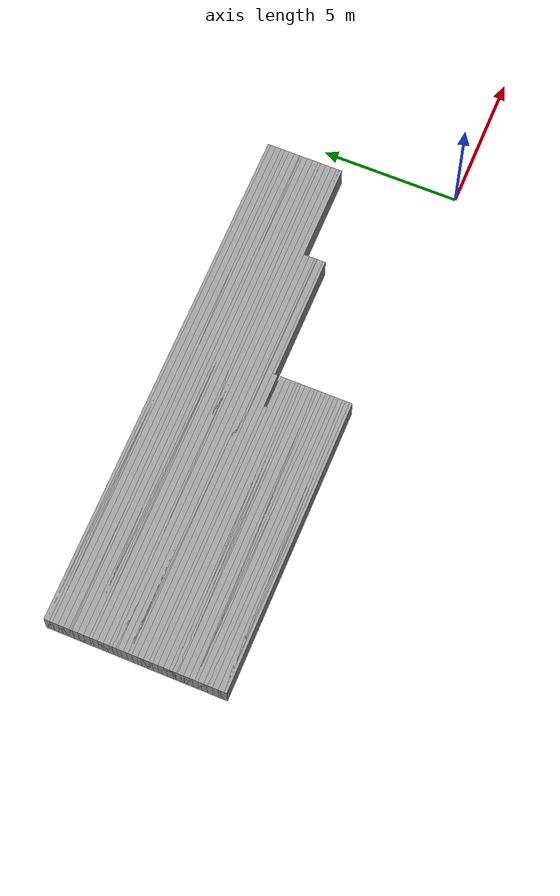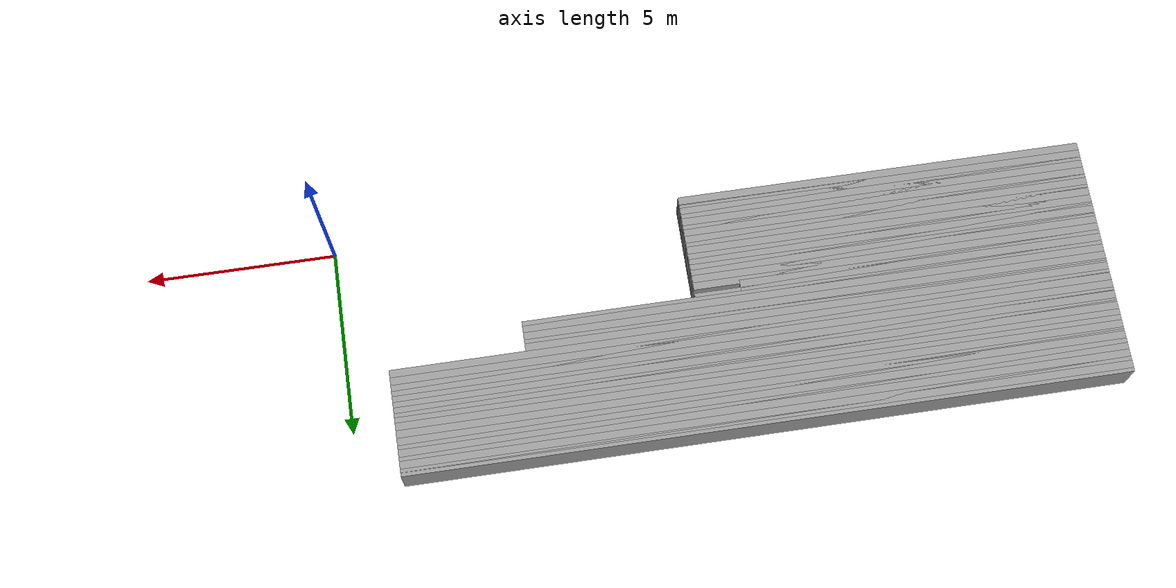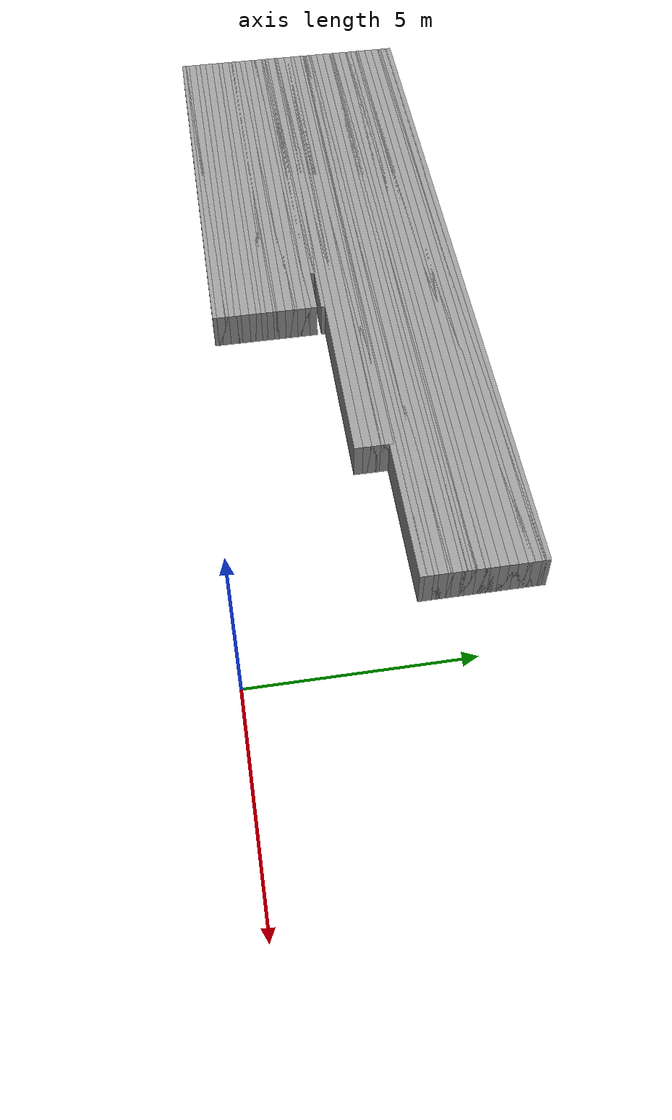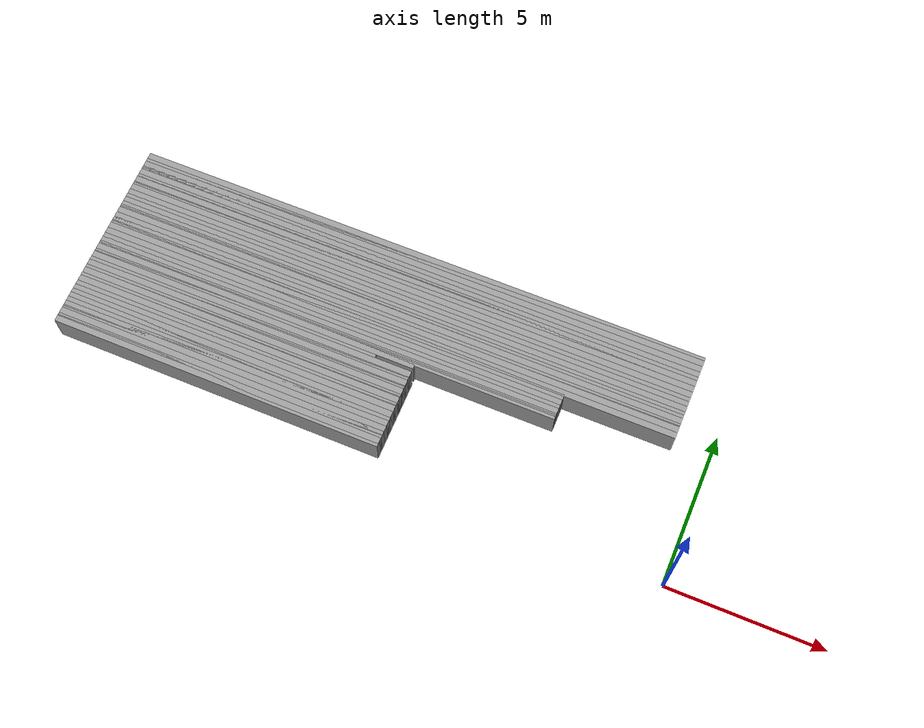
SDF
<sdf version="1.6">
 <world name="GridMap">
  <model name="GridMap">
   <link name="Wall_(145.5,4.0)">
    <collision name="Wall_(145.5,4.0)_Collision">
     <geometry><box><size>10.700000000000001 0.2 1.0</size></box></geometry>
     <pose>-14.55 0.4 0.5 0 -0 0</pose>
    </collision>
    <visual name="Wall_(145.5,4.0)_Visual">
     <geometry><box><size>10.700000000000001 0.2 1.0</size></box></geometry>
     <pose>-14.55 0.4 0.5 0 -0 0</pose>
     <material>
      <script><uri>file://media/materials/scripts/gazebo.material</uri><name>Gazebo/Grey</name></script>
      <ambient>1 1 1 1</ambient>
     </material>
     <meta><layer>0</layer></meta>
    </visual>
    <pose>0 0 0.5 0 -0 0</pose>
   </link>
   <link name="Wall_(145.5,5.0)">
    <collision name="Wall_(145.5,5.0)_Collision">
     <geometry><box><size>10.700000000000001 0.2 1.0</size></box></geometry>
     <pose>-14.55 0.5 0.5 0 -0 0</pose>
    </collision>
    <visual name="Wall_(145.5,5.0)_Visual">
     <geometry><box><size>10.700000000000001 0.2 1.0</size></box></geometry>
     <pose>-14.55 0.5 0.5 0 -0 0</pose>
     <material>
      <script><uri>file://media/materials/scripts/gazebo.material</uri><name>Gazebo/Grey</name></script>
      <ambient>1 1 1 1</ambient>
     </material>
     <meta><layer>0</layer></meta>
    </visual>
    <pose>0 0 0.5 0 -0 0</pose>
   </link>
   <link name="Wall_(145.5,6.0)">
    <collision name="Wall_(145.5,6.0)_Collision">
     <geometry><box><size>10.700000000000001 0.2 1.0</size></box></geometry>
     <pose>-14.55 0.6000000000000001 0.5 0 -0 0</pose>
    </collision>
    <visual name="Wall_(145.5,6.0)_Visual">
     <geometry><box><size>10.700000000000001 0.2 1.0</size></box></geometry>
     <pose>-14.55 0.6000000000000001 0.5 0 -0 0</pose>
     <material>
      <script><uri>file://media/materials/scripts/gazebo.material</uri><name>Gazebo/Grey</name></script>
      <ambient>1 1 1 1</ambient>
     </material>
     <meta><layer>0</layer></meta>
    </visual>
    <pose>0 0 0.5 0 -0 0</pose>
   </link>
   <link name="Wall_(145.5,7.0)">
    <collision name="Wall_(145.5,7.0)_Collision">
     <geometry><box><size>10.700000000000001 0.2 1.0</size></box></geometry>
     <pose>-14.55 0.7000000000000001 0.5 0 -0 0</pose>
    </collision>
    <visual name="Wall_(145.5,7.0)_Visual">
     <geometry><box><size>10.700000000000001 0.2 1.0</size></box></geometry>
     <pose>-14.55 0.7000000000000001 0.5 0 -0 0</pose>
     <material>
      <script><uri>file://media/materials/scripts/gazebo.material</uri><name>Gazebo/Grey</name></script>
      <ambient>1 1 1 1</ambient>
     </material>
     <meta><layer>0</layer></meta>
    </visual>
    <pose>0 0 0.5 0 -0 0</pose>
   </link>
   <link name="Wall_(145.5,8.0)">
    <collision name="Wall_(145.5,8.0)_Collision">
     <geometry><box><size>10.700000000000001 0.2 1.0</size></box></geometry>
     <pose>-14.55 0.8 0.5 0 -0 0</pose>
    </collision>
    <visual name="Wall_(145.5,8.0)_Visual">
     <geometry><box><size>10.700000000000001 0.2 1.0</size></box></geometry>
     <pose>-14.55 0.8 0.5 0 -0 0</pose>
     <material>
      <script><uri>file://media/materials/scripts/gazebo.material</uri><name>Gazebo/Grey</name></script>
      <ambient>1 1 1 1</ambient>
     </material>
     <meta><layer>0</layer></meta>
    </visual>
    <pose>0 0 0.5 0 -0 0</pose>
   </link>
   <link name="Wall_(145.5,9.0)">
    <collision name="Wall_(145.5,9.0)_Collision">
     <geometry><box><size>10.700000000000001 0.2 1.0</size></box></geometry>
     <pose>-14.55 0.9 0.5 0 -0 0</pose>
    </collision>
    <visual name="Wall_(145.5,9.0)_Visual">
     <geometry><box><size>10.700000000000001 0.2 1.0</size></box></geometry>
     <pose>-14.55 0.9 0.5 0 -0 0</pose>
     <material>
      <script><uri>file://media/materials/scripts/gazebo.material</uri><name>Gazebo/Grey</name></script>
      <ambient>1 1 1 1</ambient>
     </material>
     <meta><layer>0</layer></meta>
    </visual>
    <pose>0 0 0.5 0 -0 0</pose>
   </link>
   <link name="Wall_(145.5,10.0)">
    <collision name="Wall_(145.5,10.0)_Collision">
     <geometry><box><size>10.700000000000001 0.2 1.0</size></box></geometry>
     <pose>-14.55 1.0 0.5 0 -0 0</pose>
    </collision>
    <visual name="Wall_(145.5,10.0)_Visual">
     <geometry><box><size>10.700000000000001 0.2 1.0</size></box></geometry>
     <pose>-14.55 1.0 0.5 0 -0 0</pose>
     <material>
      <script><uri>file://media/materials/scripts/gazebo.material</uri><name>Gazebo/Grey</name></script>
      <ambient>1 1 1 1</ambient>
     </material>
     <meta><layer>0</layer></meta>
    </visual>
    <pose>0 0 0.5 0 -0 0</pose>
   </link>
   <link name="Wall_(145.5,11.0)">
    <collision name="Wall_(145.5,11.0)_Collision">
     <geometry><box><size>10.700000000000001 0.2 1.0</size></box></geometry>
     <pose>-14.55 1.1 0.5 0 -0 0</pose>
    </collision>
    <visual name="Wall_(145.5,11.0)_Visual">
     <geometry><box><size>10.700000000000001 0.2 1.0</size></box></geometry>
     <pose>-14.55 1.1 0.5 0 -0 0</pose>
     <material>
      <script><uri>file://media/materials/scripts/gazebo.material</uri><name>Gazebo/Grey</name></script>
      <ambient>1 1 1 1</ambient>
     </material>
     <meta><layer>0</layer></meta>
    </visual>
    <pose>0 0 0.5 0 -0 0</pose>
   </link>
   <link name="Wall_(145.5,12.0)">
    <collision name="Wall_(145.5,12.0)_Collision">
     <geometry><box><size>10.700000000000001 0.2 1.0</size></box></geometry>
     <pose>-14.55 1.2000000000000002 0.5 0 -0 0</pose>
    </collision>
    <visual name="Wall_(145.5,12.0)_Visual">
     <geometry><box><size>10.700000000000001 0.2 1.0</size></box></geometry>
     <pose>-14.55 1.2000000000000002 0.5 0 -0 0</pose>
     <material>
      <script><uri>file://media/materials/scripts/gazebo.material</uri><name>Gazebo/Grey</name></script>
      <ambient>1 1 1 1</ambient>
     </material>
     <meta><layer>0</layer></meta>
    </visual>
    <pose>0 0 0.5 0 -0 0</pose>
   </link>
   <link name="Wall_(145.5,13.0)">
    <collision name="Wall_(145.5,13.0)_Collision">
     <geometry><box><size>10.700000000000001 0.2 1.0</size></box></geometry>
     <pose>-14.55 1.3 0.5 0 -0 0</pose>
    </collision>
    <visual name="Wall_(145.5,13.0)_Visual">
     <geometry><box><size>10.700000000000001 0.2 1.0</size></box></geometry>
     <pose>-14.55 1.3 0.5 0 -0 0</pose>
     <material>
      <script><uri>file://media/materials/scripts/gazebo.material</uri><name>Gazebo/Grey</name></script>
      <ambient>1 1 1 1</ambient>
     </material>
     <meta><layer>0</layer></meta>
    </visual>
    <pose>0 0 0.5 0 -0 0</pose>
   </link>
   <link name="Wall_(145.5,14.0)">
    <collision name="Wall_(145.5,14.0)_Collision">
     <geometry><box><size>10.700000000000001 0.2 1.0</size></box></geometry>
     <pose>-14.55 1.4000000000000001 0.5 0 -0 0</pose>
    </collision>
    <visual name="Wall_(145.5,14.0)_Visual">
     <geometry><box><size>10.700000000000001 0.2 1.0</size></box></geometry>
     <pose>-14.55 1.4000000000000001 0.5 0 -0 0</pose>
     <material>
      <script><uri>file://media/materials/scripts/gazebo.material</uri><name>Gazebo/Grey</name></script>
      <ambient>1 1 1 1</ambient>
     </material>
     <meta><layer>0</layer></meta>
    </visual>
    <pose>0 0 0.5 0 -0 0</pose>
   </link>
   <link name="Wall_(145.5,15.0)">
    <collision name="Wall_(145.5,15.0)_Collision">
     <geometry><box><size>10.700000000000001 0.2 1.0</size></box></geometry>
     <pose>-14.55 1.5 0.5 0 -0 0</pose>
    </collision>
    <visual name="Wall_(145.5,15.0)_Visual">
     <geometry><box><size>10.700000000000001 0.2 1.0</size></box></geometry>
     <pose>-14.55 1.5 0.5 0 -0 0</pose>
     <material>
      <script><uri>file://media/materials/scripts/gazebo.material</uri><name>Gazebo/Grey</name></script>
      <ambient>1 1 1 1</ambient>
     </material>
     <meta><layer>0</layer></meta>
    </visual>
    <pose>0 0 0.5 0 -0 0</pose>
   </link>
   <link name="Wall_(145.5,16.0)">
    <collision name="Wall_(145.5,16.0)_Collision">
     <geometry><box><size>10.700000000000001 0.2 1.0</size></box></geometry>
     <pose>-14.55 1.6 0.5 0 -0 0</pose>
    </collision>
    <visual name="Wall_(145.5,16.0)_Visual">
     <geometry><box><size>10.700000000000001 0.2 1.0</size></box></geometry>
     <pose>-14.55 1.6 0.5 0 -0 0</pose>
     <material>
      <script><uri>file://media/materials/scripts/gazebo.material</uri><name>Gazebo/Grey</name></script>
      <ambient>1 1 1 1</ambient>
     </material>
     <meta><layer>0</layer></meta>
    </visual>
    <pose>0 0 0.5 0 -0 0</pose>
   </link>
   <link name="Wall_(145.5,17.0)">
    <collision name="Wall_(145.5,17.0)_Collision">
     <geometry><box><size>10.700000000000001 0.2 1.0</size></box></geometry>
     <pose>-14.55 1.7000000000000002 0.5 0 -0 0</pose>
    </collision>
    <visual name="Wall_(145.5,17.0)_Visual">
     <geometry><box><size>10.700000000000001 0.2 1.0</size></box></geometry>
     <pose>-14.55 1.7000000000000002 0.5 0 -0 0</pose>
     <material>
      <script><uri>file://media/materials/scripts/gazebo.material</uri><name>Gazebo/Grey</name></script>
      <ambient>1 1 1 1</ambient>
     </material>
     <meta><layer>0</layer></meta>
    </visual>
    <pose>0 0 0.5 0 -0 0</pose>
   </link>
   <link name="Wall_(145.5,18.0)">
    <collision name="Wall_(145.5,18.0)_Collision">
     <geometry><box><size>10.700000000000001 0.2 1.0</size></box></geometry>
     <pose>-14.55 1.8 0.5 0 -0 0</pose>
    </collision>
    <visual name="Wall_(145.5,18.0)_Visual">
     <geometry><box><size>10.700000000000001 0.2 1.0</size></box></geometry>
     <pose>-14.55 1.8 0.5 0 -0 0</pose>
     <material>
      <script><uri>file://media/materials/scripts/gazebo.material</uri><name>Gazebo/Grey</name></script>
      <ambient>1 1 1 1</ambient>
     </material>
     <meta><layer>0</layer></meta>
    </visual>
    <pose>0 0 0.5 0 -0 0</pose>
   </link>
   <link name="Wall_(145.5,19.0)">
    <collision name="Wall_(145.5,19.0)_Collision">
     <geometry><box><size>10.700000000000001 0.2 1.0</size></box></geometry>
     <pose>-14.55 1.9000000000000001 0.5 0 -0 0</pose>
    </collision>
    <visual name="Wall_(145.5,19.0)_Visual">
     <geometry><box><size>10.700000000000001 0.2 1.0</size></box></geometry>
     <pose>-14.55 1.9000000000000001 0.5 0 -0 0</pose>
     <material>
      <script><uri>file://media/materials/scripts/gazebo.material</uri><name>Gazebo/Grey</name></script>
      <ambient>1 1 1 1</ambient>
     </material>
     <meta><layer>0</layer></meta>
    </visual>
    <pose>0 0 0.5 0 -0 0</pose>
   </link>
   <link name="Wall_(145.5,20.0)">
    <collision name="Wall_(145.5,20.0)_Collision">
     <geometry><box><size>10.700000000000001 0.2 1.0</size></box></geometry>
     <pose>-14.55 2.0 0.5 0 -0 0</pose>
    </collision>
    <visual name="Wall_(145.5,20.0)_Visual">
     <geometry><box><size>10.700000000000001 0.2 1.0</size></box></geometry>
     <pose>-14.55 2.0 0.5 0 -0 0</pose>
     <material>
      <script><uri>file://media/materials/scripts/gazebo.material</uri><name>Gazebo/Grey</name></script>
      <ambient>1 1 1 1</ambient>
     </material>
     <meta><layer>0</layer></meta>
    </visual>
    <pose>0 0 0.5 0 -0 0</pose>
   </link>
   <link name="Wall_(145.5,21.0)">
    <collision name="Wall_(145.5,21.0)_Collision">
     <geometry><box><size>10.700000000000001 0.2 1.0</size></box></geometry>
     <pose>-14.55 2.1 0.5 0 -0 0</pose>
    </collision>
    <visual name="Wall_(145.5,21.0)_Visual">
     <geometry><box><size>10.700000000000001 0.2 1.0</size></box></geometry>
     <pose>-14.55 2.1 0.5 0 -0 0</pose>
     <material>
      <script><uri>file://media/materials/scripts/gazebo.material</uri><name>Gazebo/Grey</name></script>
      <ambient>1 1 1 1</ambient>
     </material>
     <meta><layer>0</layer></meta>
    </visual>
    <pose>0 0 0.5 0 -0 0</pose>
   </link>
   <link name="Wall_(145.5,22.0)">
    <collision name="Wall_(145.5,22.0)_Collision">
     <geometry><box><size>10.700000000000001 0.2 1.0</size></box></geometry>
     <pose>-14.55 2.2 0.5 0 -0 0</pose>
    </collision>
    <visual name="Wall_(145.5,22.0)_Visual">
     <geometry><box><size>10.700000000000001 0.2 1.0</size></box></geometry>
     <pose>-14.55 2.2 0.5 0 -0 0</pose>
     <material>
      <script><uri>file://media/materials/scripts/gazebo.material</uri><name>Gazebo/Grey</name></script>
      <ambient>1 1 1 1</ambient>
     </material>
     <meta><layer>0</layer></meta>
    </visual>
    <pose>0 0 0.5 0 -0 0</pose>
   </link>
   <link name="Wall_(145.5,23.0)">
    <collision name="Wall_(145.5,23.0)_Collision">
     <geometry><box><size>10.700000000000001 0.2 1.0</size></box></geometry>
     <pose>-14.55 2.3000000000000003 0.5 0 -0 0</pose>
    </collision>
    <visual name="Wall_(145.5,23.0)_Visual">
     <geometry><box><size>10.700000000000001 0.2 1.0</size></box></geometry>
     <pose>-14.55 2.3000000000000003 0.5 0 -0 0</pose>
     <material>
      <script><uri>file://media/materials/scripts/gazebo.material</uri><name>Gazebo/Grey</name></script>
      <ambient>1 1 1 1</ambient>
     </material>
     <meta><layer>0</layer></meta>
    </visual>
    <pose>0 0 0.5 0 -0 0</pose>
   </link>
   <link name="Wall_(145.5,24.0)">
    <collision name="Wall_(145.5,24.0)_Collision">
     <geometry><box><size>10.700000000000001 0.2 1.0</size></box></geometry>
     <pose>-14.55 2.4000000000000004 0.5 0 -0 0</pose>
    </collision>
    <visual name="Wall_(145.5,24.0)_Visual">
     <geometry><box><size>10.700000000000001 0.2 1.0</size></box></geometry>
     <pose>-14.55 2.4000000000000004 0.5 0 -0 0</pose>
     <material>
      <script><uri>file://media/materials/scripts/gazebo.material</uri><name>Gazebo/Grey</name></script>
      <ambient>1 1 1 1</ambient>
     </material>
     <meta><layer>0</layer></meta>
    </visual>
    <pose>0 0 0.5 0 -0 0</pose>
   </link>
   <link name="Wall_(145.5,25.0)">
    <collision name="Wall_(145.5,25.0)_Collision">
     <geometry><box><size>10.700000000000001 0.2 1.0</size></box></geometry>
     <pose>-14.55 2.5 0.5 0 -0 0</pose>
    </collision>
    <visual name="Wall_(145.5,25.0)_Visual">
     <geometry><box><size>10.700000000000001 0.2 1.0</size></box></geometry>
     <pose>-14.55 2.5 0.5 0 -0 0</pose>
     <material>
      <script><uri>file://media/materials/scripts/gazebo.material</uri><name>Gazebo/Grey</name></script>
      <ambient>1 1 1 1</ambient>
     </material>
     <meta><layer>0</layer></meta>
    </visual>
    <pose>0 0 0.5 0 -0 0</pose>
   </link>
   <link name="Wall_(145.5,26.0)">
    <collision name="Wall_(145.5,26.0)_Collision">
     <geometry><box><size>10.700000000000001 0.2 1.0</size></box></geometry>
     <pose>-14.55 2.6 0.5 0 -0 0</pose>
    </collision>
    <visual name="Wall_(145.5,26.0)_Visual">
     <geometry><box><size>10.700000000000001 0.2 1.0</size></box></geometry>
     <pose>-14.55 2.6 0.5 0 -0 0</pose>
     <material>
      <script><uri>file://media/materials/scripts/gazebo.material</uri><name>Gazebo/Grey</name></script>
      <ambient>1 1 1 1</ambient>
     </material>
     <meta><layer>0</layer></meta>
    </visual>
    <pose>0 0 0.5 0 -0 0</pose>
   </link>
   <link name="Wall_(145.5,27.0)">
    <collision name="Wall_(145.5,27.0)_Collision">
     <geometry><box><size>10.700000000000001 0.2 1.0</size></box></geometry>
     <pose>-14.55 2.7 0.5 0 -0 0</pose>
    </collision>
    <visual name="Wall_(145.5,27.0)_Visual">
     <geometry><box><size>10.700000000000001 0.2 1.0</size></box></geometry>
     <pose>-14.55 2.7 0.5 0 -0 0</pose>
     <material>
      <script><uri>file://media/materials/scripts/gazebo.material</uri><name>Gazebo/Grey</name></script>
      <ambient>1 1 1 1</ambient>
     </material>
     <meta><layer>0</layer></meta>
    </visual>
    <pose>0 0 0.5 0 -0 0</pose>
   </link>
   <link name="Wall_(145.5,28.0)">
    <collision name="Wall_(145.5,28.0)_Collision">
     <geometry><box><size>10.700000000000001 0.2 1.0</size></box></geometry>
     <pose>-14.55 2.8000000000000003 0.5 0 -0 0</pose>
    </collision>
    <visual name="Wall_(145.5,28.0)_Visual">
     <geometry><box><size>10.700000000000001 0.2 1.0</size></box></geometry>
     <pose>-14.55 2.8000000000000003 0.5 0 -0 0</pose>
     <material>
      <script><uri>file://media/materials/scripts/gazebo.material</uri><name>Gazebo/Grey</name></script>
      <ambient>1 1 1 1</ambient>
     </material>
     <meta><layer>0</layer></meta>
    </visual>
    <pose>0 0 0.5 0 -0 0</pose>
   </link>
   <link name="Wall_(151.5,29.0)">
    <collision name="Wall_(151.5,29.0)_Collision">
     <geometry><box><size>9.5 0.2 1.0</size></box></geometry>
     <pose>-15.15 2.9000000000000004 0.5 0 -0 0</pose>
    </collision>
    <visual name="Wall_(151.5,29.0)_Visual">
     <geometry><box><size>9.5 0.2 1.0</size></box></geometry>
     <pose>-15.15 2.9000000000000004 0.5 0 -0 0</pose>
     <material>
      <script><uri>file://media/materials/scripts/gazebo.material</uri><name>Gazebo/Grey</name></script>
      <ambient>1 1 1 1</ambient>
     </material>
     <meta><layer>0</layer></meta>
    </visual>
    <pose>0 0 0.5 0 -0 0</pose>
   </link>
   <link name="Wall_(151.5,30.0)">
    <collision name="Wall_(151.5,30.0)_Collision">
     <geometry><box><size>9.5 0.2 1.0</size></box></geometry>
     <pose>-15.15 3.0 0.5 0 -0 0</pose>
    </collision>
    <visual name="Wall_(151.5,30.0)_Visual">
     <geometry><box><size>9.5 0.2 1.0</size></box></geometry>
     <pose>-15.15 3.0 0.5 0 -0 0</pose>
     <material>
      <script><uri>file://media/materials/scripts/gazebo.material</uri><name>Gazebo/Grey</name></script>
      <ambient>1 1 1 1</ambient>
     </material>
     <meta><layer>0</layer></meta>
    </visual>
    <pose>0 0 0.5 0 -0 0</pose>
   </link>
   <link name="Wall_(145.5,31.0)">
    <collision name="Wall_(145.5,31.0)_Collision">
     <geometry><box><size>10.700000000000001 0.2 1.0</size></box></geometry>
     <pose>-14.55 3.1 0.5 0 -0 0</pose>
    </collision>
    <visual name="Wall_(145.5,31.0)_Visual">
     <geometry><box><size>10.700000000000001 0.2 1.0</size></box></geometry>
     <pose>-14.55 3.1 0.5 0 -0 0</pose>
     <material>
      <script><uri>file://media/materials/scripts/gazebo.material</uri><name>Gazebo/Grey</name></script>
      <ambient>1 1 1 1</ambient>
     </material>
     <meta><layer>0</layer></meta>
    </visual>
    <pose>0 0 0.5 0 -0 0</pose>
   </link>
   <link name="Wall_(123.0,32.0)">
    <collision name="Wall_(123.0,32.0)_Collision">
     <geometry><box><size>15.200000000000001 0.2 1.0</size></box></geometry>
     <pose>-12.3 3.2 0.5 0 -0 0</pose>
    </collision>
    <visual name="Wall_(123.0,32.0)_Visual">
     <geometry><box><size>15.200000000000001 0.2 1.0</size></box></geometry>
     <pose>-12.3 3.2 0.5 0 -0 0</pose>
     <material>
      <script><uri>file://media/materials/scripts/gazebo.material</uri><name>Gazebo/Grey</name></script>
      <ambient>1 1 1 1</ambient>
     </material>
     <meta><layer>0</layer></meta>
    </visual>
    <pose>0 0 0.5 0 -0 0</pose>
   </link>
   <link name="Wall_(123.0,33.0)">
    <collision name="Wall_(123.0,33.0)_Collision">
     <geometry><box><size>15.200000000000001 0.2 1.0</size></box></geometry>
     <pose>-12.3 3.3000000000000003 0.5 0 -0 0</pose>
    </collision>
    <visual name="Wall_(123.0,33.0)_Visual">
     <geometry><box><size>15.200000000000001 0.2 1.0</size></box></geometry>
     <pose>-12.3 3.3000000000000003 0.5 0 -0 0</pose>
     <material>
      <script><uri>file://media/materials/scripts/gazebo.material</uri><name>Gazebo/Grey</name></script>
      <ambient>1 1 1 1</ambient>
     </material>
     <meta><layer>0</layer></meta>
    </visual>
    <pose>0 0 0.5 0 -0 0</pose>
   </link>
   <link name="Wall_(123.0,34.0)">
    <collision name="Wall_(123.0,34.0)_Collision">
     <geometry><box><size>15.200000000000001 0.2 1.0</size></box></geometry>
     <pose>-12.3 3.4000000000000004 0.5 0 -0 0</pose>
    </collision>
    <visual name="Wall_(123.0,34.0)_Visual">
     <geometry><box><size>15.200000000000001 0.2 1.0</size></box></geometry>
     <pose>-12.3 3.4000000000000004 0.5 0 -0 0</pose>
     <material>
      <script><uri>file://media/materials/scripts/gazebo.material</uri><name>Gazebo/Grey</name></script>
      <ambient>1 1 1 1</ambient>
     </material>
     <meta><layer>0</layer></meta>
    </visual>
    <pose>0 0 0.5 0 -0 0</pose>
   </link>
   <link name="Wall_(123.0,35.0)">
    <collision name="Wall_(123.0,35.0)_Collision">
     <geometry><box><size>15.200000000000001 0.2 1.0</size></box></geometry>
     <pose>-12.3 3.5 0.5 0 -0 0</pose>
    </collision>
    <visual name="Wall_(123.0,35.0)_Visual">
     <geometry><box><size>15.200000000000001 0.2 1.0</size></box></geometry>
     <pose>-12.3 3.5 0.5 0 -0 0</pose>
     <material>
      <script><uri>file://media/materials/scripts/gazebo.material</uri><name>Gazebo/Grey</name></script>
      <ambient>1 1 1 1</ambient>
     </material>
     <meta><layer>0</layer></meta>
    </visual>
    <pose>0 0 0.5 0 -0 0</pose>
   </link>
   <link name="Wall_(123.0,36.0)">
    <collision name="Wall_(123.0,36.0)_Collision">
     <geometry><box><size>15.200000000000001 0.2 1.0</size></box></geometry>
     <pose>-12.3 3.6 0.5 0 -0 0</pose>
    </collision>
    <visual name="Wall_(123.0,36.0)_Visual">
     <geometry><box><size>15.200000000000001 0.2 1.0</size></box></geometry>
     <pose>-12.3 3.6 0.5 0 -0 0</pose>
     <material>
      <script><uri>file://media/materials/scripts/gazebo.material</uri><name>Gazebo/Grey</name></script>
      <ambient>1 1 1 1</ambient>
     </material>
     <meta><layer>0</layer></meta>
    </visual>
    <pose>0 0 0.5 0 -0 0</pose>
   </link>
   <link name="Wall_(123.0,37.0)">
    <collision name="Wall_(123.0,37.0)_Collision">
     <geometry><box><size>15.200000000000001 0.2 1.0</size></box></geometry>
     <pose>-12.3 3.7 0.5 0 -0 0</pose>
    </collision>
    <visual name="Wall_(123.0,37.0)_Visual">
     <geometry><box><size>15.200000000000001 0.2 1.0</size></box></geometry>
     <pose>-12.3 3.7 0.5 0 -0 0</pose>
     <material>
      <script><uri>file://media/materials/scripts/gazebo.material</uri><name>Gazebo/Grey</name></script>
      <ambient>1 1 1 1</ambient>
     </material>
     <meta><layer>0</layer></meta>
    </visual>
    <pose>0 0 0.5 0 -0 0</pose>
   </link>
   <link name="Wall_(123.0,38.0)">
    <collision name="Wall_(123.0,38.0)_Collision">
     <geometry><box><size>15.200000000000001 0.2 1.0</size></box></geometry>
     <pose>-12.3 3.8000000000000003 0.5 0 -0 0</pose>
    </collision>
    <visual name="Wall_(123.0,38.0)_Visual">
     <geometry><box><size>15.200000000000001 0.2 1.0</size></box></geometry>
     <pose>-12.3 3.8000000000000003 0.5 0 -0 0</pose>
     <material>
      <script><uri>file://media/materials/scripts/gazebo.material</uri><name>Gazebo/Grey</name></script>
      <ambient>1 1 1 1</ambient>
     </material>
     <meta><layer>0</layer></meta>
    </visual>
    <pose>0 0 0.5 0 -0 0</pose>
   </link>
   <link name="Wall_(123.0,39.0)">
    <collision name="Wall_(123.0,39.0)_Collision">
     <geometry><box><size>15.200000000000001 0.2 1.0</size></box></geometry>
     <pose>-12.3 3.9000000000000004 0.5 0 -0 0</pose>
    </collision>
    <visual name="Wall_(123.0,39.0)_Visual">
     <geometry><box><size>15.200000000000001 0.2 1.0</size></box></geometry>
     <pose>-12.3 3.9000000000000004 0.5 0 -0 0</pose>
     <material>
      <script><uri>file://media/materials/scripts/gazebo.material</uri><name>Gazebo/Grey</name></script>
      <ambient>1 1 1 1</ambient>
     </material>
     <meta><layer>0</layer></meta>
    </visual>
    <pose>0 0 0.5 0 -0 0</pose>
   </link>
   <link name="Wall_(105.5,40.0)">
    <collision name="Wall_(105.5,40.0)_Collision">
     <geometry><box><size>18.7 0.2 1.0</size></box></geometry>
     <pose>-10.55 4.0 0.5 0 -0 0</pose>
    </collision>
    <visual name="Wall_(105.5,40.0)_Visual">
     <geometry><box><size>18.7 0.2 1.0</size></box></geometry>
     <pose>-10.55 4.0 0.5 0 -0 0</pose>
     <material>
      <script><uri>file://media/materials/scripts/gazebo.material</uri><name>Gazebo/Grey</name></script>
      <ambient>1 1 1 1</ambient>
     </material>
     <meta><layer>0</layer></meta>
    </visual>
    <pose>0 0 0.5 0 -0 0</pose>
   </link>
   <link name="Wall_(105.5,41.0)">
    <collision name="Wall_(105.5,41.0)_Collision">
     <geometry><box><size>18.7 0.2 1.0</size></box></geometry>
     <pose>-10.55 4.1000000000000005 0.5 0 -0 0</pose>
    </collision>
    <visual name="Wall_(105.5,41.0)_Visual">
     <geometry><box><size>18.7 0.2 1.0</size></box></geometry>
     <pose>-10.55 4.1000000000000005 0.5 0 -0 0</pose>
     <material>
      <script><uri>file://media/materials/scripts/gazebo.material</uri><name>Gazebo/Grey</name></script>
      <ambient>1 1 1 1</ambient>
     </material>
     <meta><layer>0</layer></meta>
    </visual>
    <pose>0 0 0.5 0 -0 0</pose>
   </link>
   <link name="Wall_(105.5,42.0)">
    <collision name="Wall_(105.5,42.0)_Collision">
     <geometry><box><size>18.7 0.2 1.0</size></box></geometry>
     <pose>-10.55 4.2 0.5 0 -0 0</pose>
    </collision>
    <visual name="Wall_(105.5,42.0)_Visual">
     <geometry><box><size>18.7 0.2 1.0</size></box></geometry>
     <pose>-10.55 4.2 0.5 0 -0 0</pose>
     <material>
      <script><uri>file://media/materials/scripts/gazebo.material</uri><name>Gazebo/Grey</name></script>
      <ambient>1 1 1 1</ambient>
     </material>
     <meta><layer>0</layer></meta>
    </visual>
    <pose>0 0 0.5 0 -0 0</pose>
   </link>
   <link name="Wall_(105.5,43.0)">
    <collision name="Wall_(105.5,43.0)_Collision">
     <geometry><box><size>18.7 0.2 1.0</size></box></geometry>
     <pose>-10.55 4.3 0.5 0 -0 0</pose>
    </collision>
    <visual name="Wall_(105.5,43.0)_Visual">
     <geometry><box><size>18.7 0.2 1.0</size></box></geometry>
     <pose>-10.55 4.3 0.5 0 -0 0</pose>
     <material>
      <script><uri>file://media/materials/scripts/gazebo.material</uri><name>Gazebo/Grey</name></script>
      <ambient>1 1 1 1</ambient>
     </material>
     <meta><layer>0</layer></meta>
    </visual>
    <pose>0 0 0.5 0 -0 0</pose>
   </link>
   <link name="Wall_(105.5,44.0)">
    <collision name="Wall_(105.5,44.0)_Collision">
     <geometry><box><size>18.7 0.2 1.0</size></box></geometry>
     <pose>-10.55 4.4 0.5 0 -0 0</pose>
    </collision>
    <visual name="Wall_(105.5,44.0)_Visual">
     <geometry><box><size>18.7 0.2 1.0</size></box></geometry>
     <pose>-10.55 4.4 0.5 0 -0 0</pose>
     <material>
      <script><uri>file://media/materials/scripts/gazebo.material</uri><name>Gazebo/Grey</name></script>
      <ambient>1 1 1 1</ambient>
     </material>
     <meta><layer>0</layer></meta>
    </visual>
    <pose>0 0 0.5 0 -0 0</pose>
   </link>
   <link name="Wall_(105.5,45.0)">
    <collision name="Wall_(105.5,45.0)_Collision">
     <geometry><box><size>18.7 0.2 1.0</size></box></geometry>
     <pose>-10.55 4.5 0.5 0 -0 0</pose>
    </collision>
    <visual name="Wall_(105.5,45.0)_Visual">
     <geometry><box><size>18.7 0.2 1.0</size></box></geometry>
     <pose>-10.55 4.5 0.5 0 -0 0</pose>
     <material>
      <script><uri>file://media/materials/scripts/gazebo.material</uri><name>Gazebo/Grey</name></script>
      <ambient>1 1 1 1</ambient>
     </material>
     <meta><layer>0</layer></meta>
    </visual>
    <pose>0 0 0.5 0 -0 0</pose>
   </link>
   <link name="Wall_(105.5,46.0)">
    <collision name="Wall_(105.5,46.0)_Collision">
     <geometry><box><size>18.7 0.2 1.0</size></box></geometry>
     <pose>-10.55 4.6000000000000005 0.5 0 -0 0</pose>
    </collision>
    <visual name="Wall_(105.5,46.0)_Visual">
     <geometry><box><size>18.7 0.2 1.0</size></box></geometry>
     <pose>-10.55 4.6000000000000005 0.5 0 -0 0</pose>
     <material>
      <script><uri>file://media/materials/scripts/gazebo.material</uri><name>Gazebo/Grey</name></script>
      <ambient>1 1 1 1</ambient>
     </material>
     <meta><layer>0</layer></meta>
    </visual>
    <pose>0 0 0.5 0 -0 0</pose>
   </link>
   <link name="Wall_(105.5,47.0)">
    <collision name="Wall_(105.5,47.0)_Collision">
     <geometry><box><size>18.7 0.2 1.0</size></box></geometry>
     <pose>-10.55 4.7 0.5 0 -0 0</pose>
    </collision>
    <visual name="Wall_(105.5,47.0)_Visual">
     <geometry><box><size>18.7 0.2 1.0</size></box></geometry>
     <pose>-10.55 4.7 0.5 0 -0 0</pose>
     <material>
      <script><uri>file://media/materials/scripts/gazebo.material</uri><name>Gazebo/Grey</name></script>
      <ambient>1 1 1 1</ambient>
     </material>
     <meta><layer>0</layer></meta>
    </visual>
    <pose>0 0 0.5 0 -0 0</pose>
   </link>
   <link name="Wall_(105.5,48.0)">
    <collision name="Wall_(105.5,48.0)_Collision">
     <geometry><box><size>18.7 0.2 1.0</size></box></geometry>
     <pose>-10.55 4.800000000000001 0.5 0 -0 0</pose>
    </collision>
    <visual name="Wall_(105.5,48.0)_Visual">
     <geometry><box><size>18.7 0.2 1.0</size></box></geometry>
     <pose>-10.55 4.800000000000001 0.5 0 -0 0</pose>
     <material>
      <script><uri>file://media/materials/scripts/gazebo.material</uri><name>Gazebo/Grey</name></script>
      <ambient>1 1 1 1</ambient>
     </material>
     <meta><layer>0</layer></meta>
    </visual>
    <pose>0 0 0.5 0 -0 0</pose>
   </link>
   <link name="Wall_(105.5,49.0)">
    <collision name="Wall_(105.5,49.0)_Collision">
     <geometry><box><size>18.7 0.2 1.0</size></box></geometry>
     <pose>-10.55 4.9 0.5 0 -0 0</pose>
    </collision>
    <visual name="Wall_(105.5,49.0)_Visual">
     <geometry><box><size>18.7 0.2 1.0</size></box></geometry>
     <pose>-10.55 4.9 0.5 0 -0 0</pose>
     <material>
      <script><uri>file://media/materials/scripts/gazebo.material</uri><name>Gazebo/Grey</name></script>
      <ambient>1 1 1 1</ambient>
     </material>
     <meta><layer>0</layer></meta>
    </visual>
    <pose>0 0 0.5 0 -0 0</pose>
   </link>
   <link name="Wall_(105.5,50.0)">
    <collision name="Wall_(105.5,50.0)_Collision">
     <geometry><box><size>18.7 0.2 1.0</size></box></geometry>
     <pose>-10.55 5.0 0.5 0 -0 0</pose>
    </collision>
    <visual name="Wall_(105.5,50.0)_Visual">
     <geometry><box><size>18.7 0.2 1.0</size></box></geometry>
     <pose>-10.55 5.0 0.5 0 -0 0</pose>
     <material>
      <script><uri>file://media/materials/scripts/gazebo.material</uri><name>Gazebo/Grey</name></script>
      <ambient>1 1 1 1</ambient>
     </material>
     <meta><layer>0</layer></meta>
    </visual>
    <pose>0 0 0.5 0 -0 0</pose>
   </link>
   <link name="Wall_(105.5,51.0)">
    <collision name="Wall_(105.5,51.0)_Collision">
     <geometry><box><size>18.7 0.2 1.0</size></box></geometry>
     <pose>-10.55 5.1000000000000005 0.5 0 -0 0</pose>
    </collision>
    <visual name="Wall_(105.5,51.0)_Visual">
     <geometry><box><size>18.7 0.2 1.0</size></box></geometry>
     <pose>-10.55 5.1000000000000005 0.5 0 -0 0</pose>
     <material>
      <script><uri>file://media/materials/scripts/gazebo.material</uri><name>Gazebo/Grey</name></script>
      <ambient>1 1 1 1</ambient>
     </material>
     <meta><layer>0</layer></meta>
    </visual>
    <pose>0 0 0.5 0 -0 0</pose>
   </link>
   <link name="Wall_(105.5,52.0)">
    <collision name="Wall_(105.5,52.0)_Collision">
     <geometry><box><size>18.7 0.2 1.0</size></box></geometry>
     <pose>-10.55 5.2 0.5 0 -0 0</pose>
    </collision>
    <visual name="Wall_(105.5,52.0)_Visual">
     <geometry><box><size>18.7 0.2 1.0</size></box></geometry>
     <pose>-10.55 5.2 0.5 0 -0 0</pose>
     <material>
      <script><uri>file://media/materials/scripts/gazebo.material</uri><name>Gazebo/Grey</name></script>
      <ambient>1 1 1 1</ambient>
     </material>
     <meta><layer>0</layer></meta>
    </visual>
    <pose>0 0 0.5 0 -0 0</pose>
   </link>
   <link name="Wall_(105.5,53.0)">
    <collision name="Wall_(105.5,53.0)_Collision">
     <geometry><box><size>18.7 0.2 1.0</size></box></geometry>
     <pose>-10.55 5.300000000000001 0.5 0 -0 0</pose>
    </collision>
    <visual name="Wall_(105.5,53.0)_Visual">
     <geometry><box><size>18.7 0.2 1.0</size></box></geometry>
     <pose>-10.55 5.300000000000001 0.5 0 -0 0</pose>
     <material>
      <script><uri>file://media/materials/scripts/gazebo.material</uri><name>Gazebo/Grey</name></script>
      <ambient>1 1 1 1</ambient>
     </material>
     <meta><layer>0</layer></meta>
    </visual>
    <pose>0 0 0.5 0 -0 0</pose>
   </link>
   <link name="Wall_(105.5,54.0)">
    <collision name="Wall_(105.5,54.0)_Collision">
     <geometry><box><size>18.7 0.2 1.0</size></box></geometry>
     <pose>-10.55 5.4 0.5 0 -0 0</pose>
    </collision>
    <visual name="Wall_(105.5,54.0)_Visual">
     <geometry><box><size>18.7 0.2 1.0</size></box></geometry>
     <pose>-10.55 5.4 0.5 0 -0 0</pose>
     <material>
      <script><uri>file://media/materials/scripts/gazebo.material</uri><name>Gazebo/Grey</name></script>
      <ambient>1 1 1 1</ambient>
     </material>
     <meta><layer>0</layer></meta>
    </visual>
    <pose>0 0 0.5 0 -0 0</pose>
   </link>
   <link name="Wall_(105.5,55.0)">
    <collision name="Wall_(105.5,55.0)_Collision">
     <geometry><box><size>18.7 0.2 1.0</size></box></geometry>
     <pose>-10.55 5.5 0.5 0 -0 0</pose>
    </collision>
    <visual name="Wall_(105.5,55.0)_Visual">
     <geometry><box><size>18.7 0.2 1.0</size></box></geometry>
     <pose>-10.55 5.5 0.5 0 -0 0</pose>
     <material>
      <script><uri>file://media/materials/scripts/gazebo.material</uri><name>Gazebo/Grey</name></script>
      <ambient>1 1 1 1</ambient>
     </material>
     <meta><layer>0</layer></meta>
    </visual>
    <pose>0 0 0.5 0 -0 0</pose>
   </link>
   <link name="Wall_(105.5,56.0)">
    <collision name="Wall_(105.5,56.0)_Collision">
     <geometry><box><size>18.7 0.2 1.0</size></box></geometry>
     <pose>-10.55 5.6000000000000005 0.5 0 -0 0</pose>
    </collision>
    <visual name="Wall_(105.5,56.0)_Visual">
     <geometry><box><size>18.7 0.2 1.0</size></box></geometry>
     <pose>-10.55 5.6000000000000005 0.5 0 -0 0</pose>
     <material>
      <script><uri>file://media/materials/scripts/gazebo.material</uri><name>Gazebo/Grey</name></script>
      <ambient>1 1 1 1</ambient>
     </material>
     <meta><layer>0</layer></meta>
    </visual>
    <pose>0 0 0.5 0 -0 0</pose>
   </link>
   <link name="Wall_(105.5,57.0)">
    <collision name="Wall_(105.5,57.0)_Collision">
     <geometry><box><size>18.7 0.2 1.0</size></box></geometry>
     <pose>-10.55 5.7 0.5 0 -0 0</pose>
    </collision>
    <visual name="Wall_(105.5,57.0)_Visual">
     <geometry><box><size>18.7 0.2 1.0</size></box></geometry>
     <pose>-10.55 5.7 0.5 0 -0 0</pose>
     <material>
      <script><uri>file://media/materials/scripts/gazebo.material</uri><name>Gazebo/Grey</name></script>
      <ambient>1 1 1 1</ambient>
     </material>
     <meta><layer>0</layer></meta>
    </visual>
    <pose>0 0 0.5 0 -0 0</pose>
   </link>
   <link name="Wall_(105.5,58.0)">
    <collision name="Wall_(105.5,58.0)_Collision">
     <geometry><box><size>18.7 0.2 1.0</size></box></geometry>
     <pose>-10.55 5.800000000000001 0.5 0 -0 0</pose>
    </collision>
    <visual name="Wall_(105.5,58.0)_Visual">
     <geometry><box><size>18.7 0.2 1.0</size></box></geometry>
     <pose>-10.55 5.800000000000001 0.5 0 -0 0</pose>
     <material>
      <script><uri>file://media/materials/scripts/gazebo.material</uri><name>Gazebo/Grey</name></script>
      <ambient>1 1 1 1</ambient>
     </material>
     <meta><layer>0</layer></meta>
    </visual>
    <pose>0 0 0.5 0 -0 0</pose>
   </link>
   <link name="Wall_(105.5,59.0)">
    <collision name="Wall_(105.5,59.0)_Collision">
     <geometry><box><size>18.7 0.2 1.0</size></box></geometry>
     <pose>-10.55 5.9 0.5 0 -0 0</pose>
    </collision>
    <visual name="Wall_(105.5,59.0)_Visual">
     <geometry><box><size>18.7 0.2 1.0</size></box></geometry>
     <pose>-10.55 5.9 0.5 0 -0 0</pose>
     <material>
      <script><uri>file://media/materials/scripts/gazebo.material</uri><name>Gazebo/Grey</name></script>
      <ambient>1 1 1 1</ambient>
     </material>
     <meta><layer>0</layer></meta>
    </visual>
    <pose>0 0 0.5 0 -0 0</pose>
   </link>
   <link name="Wall_(105.5,60.0)">
    <collision name="Wall_(105.5,60.0)_Collision">
     <geometry><box><size>18.7 0.2 1.0</size></box></geometry>
     <pose>-10.55 6.0 0.5 0 -0 0</pose>
    </collision>
    <visual name="Wall_(105.5,60.0)_Visual">
     <geometry><box><size>18.7 0.2 1.0</size></box></geometry>
     <pose>-10.55 6.0 0.5 0 -0 0</pose>
     <material>
      <script><uri>file://media/materials/scripts/gazebo.material</uri><name>Gazebo/Grey</name></script>
      <ambient>1 1 1 1</ambient>
     </material>
     <meta><layer>0</layer></meta>
    </visual>
    <pose>0 0 0.5 0 -0 0</pose>
   </link>
   <link name="Wall_(105.5,61.0)">
    <collision name="Wall_(105.5,61.0)_Collision">
     <geometry><box><size>18.7 0.2 1.0</size></box></geometry>
     <pose>-10.55 6.1000000000000005 0.5 0 -0 0</pose>
    </collision>
    <visual name="Wall_(105.5,61.0)_Visual">
     <geometry><box><size>18.7 0.2 1.0</size></box></geometry>
     <pose>-10.55 6.1000000000000005 0.5 0 -0 0</pose>
     <material>
      <script><uri>file://media/materials/scripts/gazebo.material</uri><name>Gazebo/Grey</name></script>
      <ambient>1 1 1 1</ambient>
     </material>
     <meta><layer>0</layer></meta>
    </visual>
    <pose>0 0 0.5 0 -0 0</pose>
   </link>
   <link name="Wall_(105.5,62.0)">
    <collision name="Wall_(105.5,62.0)_Collision">
     <geometry><box><size>18.7 0.2 1.0</size></box></geometry>
     <pose>-10.55 6.2 0.5 0 -0 0</pose>
    </collision>
    <visual name="Wall_(105.5,62.0)_Visual">
     <geometry><box><size>18.7 0.2 1.0</size></box></geometry>
     <pose>-10.55 6.2 0.5 0 -0 0</pose>
     <material>
      <script><uri>file://media/materials/scripts/gazebo.material</uri><name>Gazebo/Grey</name></script>
      <ambient>1 1 1 1</ambient>
     </material>
     <meta><layer>0</layer></meta>
    </visual>
    <pose>0 0 0.5 0 -0 0</pose>
   </link>
   <link name="Wall_(105.5,63.0)">
    <collision name="Wall_(105.5,63.0)_Collision">
     <geometry><box><size>18.7 0.2 1.0</size></box></geometry>
     <pose>-10.55 6.300000000000001 0.5 0 -0 0</pose>
    </collision>
    <visual name="Wall_(105.5,63.0)_Visual">
     <geometry><box><size>18.7 0.2 1.0</size></box></geometry>
     <pose>-10.55 6.300000000000001 0.5 0 -0 0</pose>
     <material>
      <script><uri>file://media/materials/scripts/gazebo.material</uri><name>Gazebo/Grey</name></script>
      <ambient>1 1 1 1</ambient>
     </material>
     <meta><layer>0</layer></meta>
    </visual>
    <pose>0 0 0.5 0 -0 0</pose>
   </link>
   <link name="Wall_(105.5,64.0)">
    <collision name="Wall_(105.5,64.0)_Collision">
     <geometry><box><size>18.7 0.2 1.0</size></box></geometry>
     <pose>-10.55 6.4 0.5 0 -0 0</pose>
    </collision>
    <visual name="Wall_(105.5,64.0)_Visual">
     <geometry><box><size>18.7 0.2 1.0</size></box></geometry>
     <pose>-10.55 6.4 0.5 0 -0 0</pose>
     <material>
      <script><uri>file://media/materials/scripts/gazebo.material</uri><name>Gazebo/Grey</name></script>
      <ambient>1 1 1 1</ambient>
     </material>
     <meta><layer>0</layer></meta>
    </visual>
    <pose>0 0 0.5 0 -0 0</pose>
   </link>
   <link name="Wall_(105.5,65.0)">
    <collision name="Wall_(105.5,65.0)_Collision">
     <geometry><box><size>18.7 0.2 1.0</size></box></geometry>
     <pose>-10.55 6.5 0.5 0 -0 0</pose>
    </collision>
    <visual name="Wall_(105.5,65.0)_Visual">
     <geometry><box><size>18.7 0.2 1.0</size></box></geometry>
     <pose>-10.55 6.5 0.5 0 -0 0</pose>
     <material>
      <script><uri>file://media/materials/scripts/gazebo.material</uri><name>Gazebo/Grey</name></script>
      <ambient>1 1 1 1</ambient>
     </material>
     <meta><layer>0</layer></meta>
    </visual>
    <pose>0 0 0.5 0 -0 0</pose>
   </link>
   <link name="Wall_(105.5,66.0)">
    <collision name="Wall_(105.5,66.0)_Collision">
     <geometry><box><size>18.7 0.2 1.0</size></box></geometry>
     <pose>-10.55 6.6000000000000005 0.5 0 -0 0</pose>
    </collision>
    <visual name="Wall_(105.5,66.0)_Visual">
     <geometry><box><size>18.7 0.2 1.0</size></box></geometry>
     <pose>-10.55 6.6000000000000005 0.5 0 -0 0</pose>
     <material>
      <script><uri>file://media/materials/scripts/gazebo.material</uri><name>Gazebo/Grey</name></script>
      <ambient>1 1 1 1</ambient>
     </material>
     <meta><layer>0</layer></meta>
    </visual>
    <pose>0 0 0.5 0 -0 0</pose>
   </link>
   <static>1</static>
  </model>
 </world>
</sdf>
